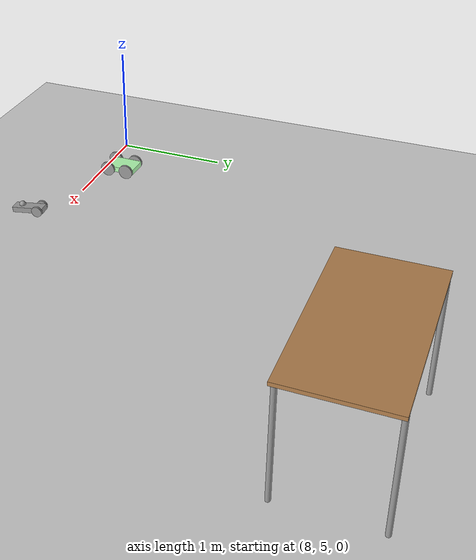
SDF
<sdf version="1.6">
 <world name="default">
  <model name="ground_plane">
   <static>1</static>
   <link name="link">
    <collision name="collision">
     <geometry><plane><normal>0 0 1</normal><size>100 100</size></plane></geometry>
     <surface><friction><ode><mu>100</mu><mu2>50</mu2></ode></friction></surface>
    </collision>
    <visual name="visual">
     <cast_shadows>0</cast_shadows>
     <geometry><plane><normal>0 0 1</normal><size>100 100</size></plane></geometry>
     <material>
      <script><uri>file://media/materials/scripts/gazebo.material</uri><name>Gazebo/Grey</name></script>
     </material>
    </visual>
   </link>
  </model>
  <model name="table">
   <static>1</static>
   <link name="link">
    <collision name="surface">
     <pose>0 0 1 0 -0 0</pose>
     <geometry><box><size>1.5 0.8 0.03</size></box></geometry>
     <surface><friction><ode><mu>0.6</mu><mu2>0.6</mu2></ode></friction></surface>
    </collision>
    <visual name="visual1">
     <pose>0 0 1 0 -0 0</pose>
     <geometry><box><size>1.5 0.8 0.03</size></box></geometry>
     <material>
      <script><uri>file://media/materials/scripts/gazebo.material</uri><name>Gazebo/Wood</name></script>
     </material>
    </visual>
    <collision name="front_left_leg">
     <pose>0.68 0.38 0.5 0 -0 0</pose>
     <geometry><cylinder><radius>0.02</radius><length>1</length></cylinder></geometry>
    </collision>
    <visual name="front_left_leg">
     <pose>0.68 0.38 0.5 0 -0 0</pose>
     <geometry><cylinder><radius>0.02</radius><length>1</length></cylinder></geometry>
     <material>
      <script><uri>file://media/materials/scripts/gazebo.material</uri><name>Gazebo/Grey</name></script>
     </material>
    </visual>
    <collision name="front_right_leg">
     <pose>0.68 -0.38 0.5 0 -0 0</pose>
     <geometry><cylinder><radius>0.02</radius><length>1</length></cylinder></geometry>
    </collision>
    <visual name="front_right_leg">
     <pose>0.68 -0.38 0.5 0 -0 0</pose>
     <geometry><cylinder><radius>0.02</radius><length>1</length></cylinder></geometry>
     <material>
      <script><uri>file://media/materials/scripts/gazebo.material</uri><name>Gazebo/Grey</name></script>
     </material>
    </visual>
    <collision name="back_right_leg">
     <pose>-0.68 -0.38 0.5 0 -0 0</pose>
     <geometry><cylinder><radius>0.02</radius><length>1</length></cylinder></geometry>
    </collision>
    <visual name="back_right_leg">
     <pose>-0.68 -0.38 0.5 0 -0 0</pose>
     <geometry><cylinder><radius>0.02</radius><length>1</length></cylinder></geometry>
     <material>
      <script><uri>file://media/materials/scripts/gazebo.material</uri><name>Gazebo/Grey</name></script>
     </material>
    </visual>
    <collision name="back_left_leg">
     <pose>-0.68 0.38 0.5 0 -0 0</pose>
     <geometry><cylinder><radius>0.02</radius><length>1</length></cylinder></geometry>
    </collision>
    <visual name="back_left_leg">
     <pose>-0.68 0.38 0.5 0 -0 0</pose>
     <geometry><cylinder><radius>0.02</radius><length>1</length></cylinder></geometry>
     <material>
      <script><uri>file://media/materials/scripts/gazebo.material</uri><name>Gazebo/Grey</name></script>
     </material>
    </visual>
   </link>
   <pose>11.3668 8.21918 0 0 -0 0</pose>
  </model>
  <model name="robot_1">
   <link name="link_0">
    <pose>-2.13328 0.459345 0.5075 0 -0 0</pose>
    <inertial>
     <mass>1</mass>
     <inertia>
      <ixx>0.166667</ixx>
      <ixy>0</ixy>
      <ixz>0</ixz>
      <iyy>0.166667</iyy>
      <iyz>0</iyz>
      <izz>0.166667</izz>
     </inertia>
     <pose>0 0 0.4 0 -0 0</pose>
    </inertial>
    <visual name="visual">
     <geometry><box><size>0.1 0.3 0.05</size></box></geometry>
     <material>
      <lighting>1</lighting>
      <script><uri>file://media/materials/scripts/gazebo.material</uri><name>Gazebo/Grey</name></script>
      <ambient>0.3 0.3 0.3 1</ambient>
      <diffuse>0.7 0.7 0.7 1</diffuse>
      <specular>0.01 0.01 0.01 1</specular>
      <emissive>0 0 0 1</emissive>
      <shader type="vertex"><normal_map>__default__</normal_map></shader>
     </material>
    </visual>
    <collision name="collision">
     <geometry><box><size>0.1 0.3 0.05</size></box></geometry>
     <surface>
      <friction>
       <ode><mu>1</mu><mu2>1</mu2><fdir1>0 0 0</fdir1><slip1>0</slip1><slip2>0</slip2></ode>
       <torsional>
        <coefficient>1</coefficient>
        <patch_radius>0</patch_radius>
        <surface_radius>0</surface_radius>
        <use_patch_radius>1</use_patch_radius>
        <ode><slip>0</slip></ode>
       </torsional>
      </friction>
      <bounce><restitution_coefficient>0</restitution_coefficient><threshold>1e+06</threshold></bounce>
      <contact>
       <collide_without_contact>0</collide_without_contact>
       <collide_without_contact_bitmask>1</collide_without_contact_bitmask>
       <collide_bitmask>1</collide_bitmask>
       <ode>
        <soft_cfm>0</soft_cfm>
        <soft_erp>0.2</soft_erp>
        <kp>1e+13</kp>
        <kd>1</kd>
        <max_vel>0.01</max_vel>
        <min_depth>0</min_depth>
       </ode>
       <bullet>
        <split_impulse>1</split_impulse>
        <split_impulse_penetration_threshold>-0.01</split_impulse_penetration_threshold>
        <soft_cfm>0</soft_cfm>
        <soft_erp>0.2</soft_erp>
        <kp>1e+13</kp>
        <kd>1</kd>
       </bullet>
      </contact>
     </surface>
    </collision>
   </link>
   <link name="link_1">
    <pose>-2.19328 0.359348 0.5075 0 -0 0</pose>
    <inertial>
     <mass>1</mass>
     <inertia><ixx>0.145833</ixx><ixy>0</ixy><ixz>0</ixz><iyy>0.145833</iyy><iyz>0</iyz><izz>0.125</izz></inertia>
    </inertial>
    <visual name="visual">
     <pose>0 0 0 1.5707 0 1.5707</pose>
     <geometry><cylinder><radius>0.05</radius><length>0.02</length></cylinder></geometry>
     <material>
      <lighting>1</lighting>
      <script><uri>file://media/materials/scripts/gazebo.material</uri><name>Gazebo/Grey</name></script>
      <ambient>0.3 0.3 0.3 1</ambient>
      <diffuse>0.7 0.7 0.7 1</diffuse>
      <specular>0.01 0.01 0.01 1</specular>
      <emissive>0 0 0 1</emissive>
      <shader type="vertex"><normal_map>__default__</normal_map></shader>
     </material>
    </visual>
    <collision name="collision">
     <pose>0 0 0 1.5707 0 1.5705</pose>
     <geometry><cylinder><radius>0.05</radius><length>0.02</length></cylinder></geometry>
     <surface>
      <friction>
       <ode><mu>1</mu><mu2>1</mu2><fdir1>0 0 0</fdir1><slip1>0</slip1><slip2>0</slip2></ode>
       <torsional>
        <coefficient>1</coefficient>
        <patch_radius>0</patch_radius>
        <surface_radius>0</surface_radius>
        <use_patch_radius>1</use_patch_radius>
        <ode><slip>0</slip></ode>
       </torsional>
      </friction>
      <bounce><restitution_coefficient>0</restitution_coefficient><threshold>1e+06</threshold></bounce>
      <contact>
       <collide_without_contact>0</collide_without_contact>
       <collide_without_contact_bitmask>1</collide_without_contact_bitmask>
       <collide_bitmask>1</collide_bitmask>
       <ode>
        <soft_cfm>0</soft_cfm>
        <soft_erp>0.2</soft_erp>
        <kp>1e+13</kp>
        <kd>1</kd>
        <max_vel>0.01</max_vel>
        <min_depth>0</min_depth>
       </ode>
       <bullet>
        <split_impulse>1</split_impulse>
        <split_impulse_penetration_threshold>-0.01</split_impulse_penetration_threshold>
        <soft_cfm>0</soft_cfm>
        <soft_erp>0.2</soft_erp>
        <kp>1e+13</kp>
        <kd>1</kd>
       </bullet>
      </contact>
     </surface>
    </collision>
   </link>
   <link name="link_1_clone">
    <pose>-2.07328 0.359348 0.5075 0 -0 0</pose>
    <inertial>
     <mass>1</mass>
     <inertia><ixx>0.145833</ixx><ixy>0</ixy><ixz>0</ixz><iyy>0.145833</iyy><iyz>0</iyz><izz>0.125</izz></inertia>
    </inertial>
    <visual name="visual">
     <pose>0 0 0 1.5707 0 1.5707</pose>
     <geometry><cylinder><radius>0.05</radius><length>0.02</length></cylinder></geometry>
     <material>
      <lighting>1</lighting>
      <script><uri>file://media/materials/scripts/gazebo.material</uri><name>Gazebo/Grey</name></script>
      <ambient>0.3 0.3 0.3 1</ambient>
      <diffuse>0.7 0.7 0.7 1</diffuse>
      <specular>0.01 0.01 0.01 1</specular>
      <emissive>0 0 0 1</emissive>
      <shader type="vertex"><normal_map>__default__</normal_map></shader>
     </material>
    </visual>
    <collision name="collision">
     <pose>0 0 0 1.5707 0 1.5705</pose>
     <geometry><cylinder><radius>0.05</radius><length>0.02</length></cylinder></geometry>
     <surface>
      <friction>
       <ode><mu>1</mu><mu2>1</mu2><fdir1>0 0 0</fdir1><slip1>0</slip1><slip2>0</slip2></ode>
       <torsional>
        <coefficient>1</coefficient>
        <patch_radius>0</patch_radius>
        <surface_radius>0</surface_radius>
        <use_patch_radius>1</use_patch_radius>
        <ode><slip>0</slip></ode>
       </torsional>
      </friction>
      <bounce><restitution_coefficient>0</restitution_coefficient><threshold>1e+06</threshold></bounce>
      <contact>
       <collide_without_contact>0</collide_without_contact>
       <collide_without_contact_bitmask>1</collide_without_contact_bitmask>
       <collide_bitmask>1</collide_bitmask>
       <ode>
        <soft_cfm>0</soft_cfm>
        <soft_erp>0.2</soft_erp>
        <kp>1e+13</kp>
        <kd>1</kd>
        <max_vel>0.01</max_vel>
        <min_depth>0</min_depth>
       </ode>
       <bullet>
        <split_impulse>1</split_impulse>
        <split_impulse_penetration_threshold>-0.01</split_impulse_penetration_threshold>
        <soft_cfm>0</soft_cfm>
        <soft_erp>0.2</soft_erp>
        <kp>1e+13</kp>
        <kd>1</kd>
       </bullet>
      </contact>
     </surface>
    </collision>
   </link>
   <link name="link_2">
    <pose>-2.14328 0.529345 0.4775 0 -0 0</pose>
    <inertial>
     <mass>1</mass>
     <inertia><ixx>0.1</ixx><ixy>0</ixy><ixz>0</ixz><iyy>0.1</iyy><iyz>0</iyz><izz>0.1</izz></inertia>
    </inertial>
    <visual name="visual">
     <geometry><sphere><radius>0.03</radius></sphere></geometry>
     <material>
      <lighting>1</lighting>
      <script><uri>file://media/materials/scripts/gazebo.material</uri><name>Gazebo/Grey</name></script>
      <ambient>0.3 0.3 0.3 1</ambient>
      <diffuse>0.7 0.7 0.7 1</diffuse>
      <specular>0.01 0.01 0.01 1</specular>
      <emissive>0 0 0 1</emissive>
      <shader type="vertex"><normal_map>__default__</normal_map></shader>
     </material>
    </visual>
    <collision name="collision">
     <geometry><sphere><radius>0.03</radius></sphere></geometry>
     <surface>
      <friction>
       <ode><mu>1</mu><mu2>1</mu2><fdir1>0 0 0</fdir1><slip1>0</slip1><slip2>0</slip2></ode>
       <torsional>
        <coefficient>1</coefficient>
        <patch_radius>0</patch_radius>
        <surface_radius>0</surface_radius>
        <use_patch_radius>1</use_patch_radius>
        <ode><slip>0</slip></ode>
       </torsional>
      </friction>
      <bounce><restitution_coefficient>0</restitution_coefficient><threshold>1e+06</threshold></bounce>
      <contact>
       <collide_without_contact>0</collide_without_contact>
       <collide_without_contact_bitmask>1</collide_without_contact_bitmask>
       <collide_bitmask>1</collide_bitmask>
       <ode>
        <soft_cfm>0</soft_cfm>
        <soft_erp>0.2</soft_erp>
        <kp>1e+13</kp>
        <kd>1</kd>
        <max_vel>0.01</max_vel>
        <min_depth>0</min_depth>
       </ode>
       <bullet>
        <split_impulse>1</split_impulse>
        <split_impulse_penetration_threshold>-0.01</split_impulse_penetration_threshold>
        <soft_cfm>0</soft_cfm>
        <soft_erp>0.2</soft_erp>
        <kp>1e+13</kp>
        <kd>1</kd>
       </bullet>
      </contact>
     </surface>
    </collision>
   </link>
   <joint name="link_0_JOINT_1" type="revolute">
    <parent>link_0</parent>
    <child>link_1</child>
    <axis>
     <xyz>1 0 0</xyz>
     <use_parent_model_frame>0</use_parent_model_frame>
     <limit>
      <lower>-1.79769e+308</lower>
      <upper>1.79769e+308</upper>
      <effort>-1</effort>
      <velocity>-1</velocity>
     </limit>
     <dynamics>
      <spring_reference>0</spring_reference>
      <spring_stiffness>0</spring_stiffness>
      <damping>0</damping>
     </dynamics>
    </axis>
    <physics>
     <ode><limit><cfm>0</cfm><erp>0.2</erp></limit><suspension><cfm>0</cfm><erp>0.2</erp></suspension></ode>
    </physics>
   </joint>
   <joint name="link_0_JOINT_2" type="revolute">
    <parent>link_0</parent>
    <child>link_1_clone</child>
    <axis>
     <xyz>1 0 0</xyz>
     <use_parent_model_frame>0</use_parent_model_frame>
     <limit>
      <lower>-1.79769e+308</lower>
      <upper>1.79769e+308</upper>
      <effort>-1</effort>
      <velocity>-1</velocity>
     </limit>
     <dynamics>
      <spring_reference>0</spring_reference>
      <spring_stiffness>0</spring_stiffness>
      <damping>0</damping>
     </dynamics>
    </axis>
    <physics>
     <ode><limit><cfm>0</cfm><erp>0.2</erp></limit><suspension><cfm>0</cfm><erp>0.2</erp></suspension></ode>
    </physics>
   </joint>
   <joint name="link_0_JOINT_3" type="ball">
    <parent>link_0</parent>
    <child>link_2</child>
    <physics>
     <ode><limit><cfm>0</cfm><erp>0.2</erp></limit><suspension><cfm>0</cfm><erp>0.2</erp></suspension></ode>
    </physics>
   </joint>
   <static>0</static>
   <pose>11.6243 5.28479 0.591075 -3.04091 -1.1e-05 0.072111</pose>
  </model>
  <model name="robot_2">
   <link name="link">
    <inertial>
     <mass>1</mass>
     <inertia>
      <ixx>0.166667</ixx>
      <ixy>0</ixy>
      <ixz>0</ixz>
      <iyy>0.166667</iyy>
      <iyz>0</iyz>
      <izz>0.166667</izz>
     </inertia>
    </inertial>
    <visual name="visual">
     <geometry><box><size>0.2 0.3 0.05</size></box></geometry>
     <material>
      <script><name>Gazebo/Grey</name><uri>file://media/materials/scripts/gazebo.material</uri></script>
      <ambient>0.3 0.3 0.3 1</ambient>
      <diffuse>0.7 1 0.7 1</diffuse>
      <specular>0.01 0.01 0.01 1</specular>
      <emissive>0 0 0 1</emissive>
      <shader type="vertex"><normal_map>__default__</normal_map></shader>
     </material>
    </visual>
    <collision name="collision">
     <geometry><box><size>0.1 0.3 0.05</size></box></geometry>
     <surface>
      <friction>
       <ode><mu>1</mu><mu2>1</mu2><fdir1>0 0 0</fdir1><slip1>0</slip1><slip2>0</slip2></ode>
       <torsional>
        <coefficient>1</coefficient>
        <patch_radius>0</patch_radius>
        <surface_radius>0</surface_radius>
        <use_patch_radius>1</use_patch_radius>
        <ode><slip>0</slip></ode>
       </torsional>
      </friction>
      <bounce><restitution_coefficient>0</restitution_coefficient><threshold>1e+06</threshold></bounce>
      <contact>
       <collide_without_contact>0</collide_without_contact>
       <collide_without_contact_bitmask>1</collide_without_contact_bitmask>
       <collide_bitmask>1</collide_bitmask>
       <ode>
        <soft_cfm>0</soft_cfm>
        <soft_erp>0.2</soft_erp>
        <kp>1e+13</kp>
        <kd>1</kd>
        <max_vel>0.01</max_vel>
        <min_depth>0</min_depth>
       </ode>
       <bullet>
        <split_impulse>1</split_impulse>
        <split_impulse_penetration_threshold>-0.01</split_impulse_penetration_threshold>
        <soft_cfm>0</soft_cfm>
        <soft_erp>0.2</soft_erp>
        <kp>1e+13</kp>
        <kd>1</kd>
       </bullet>
      </contact>
     </surface>
    </collision>
   </link>
   <link name="link_0">
    <pose>-0.11 -0.126568 4e-06 1e-05 -0 0</pose>
    <inertial>
     <mass>1</mass>
     <inertia><ixx>0.145833</ixx><ixy>0</ixy><ixz>0</ixz><iyy>0.145833</iyy><iyz>0</iyz><izz>0.125</izz></inertia>
    </inertial>
    <visual name="visual">
     <pose>0 0 0 1.5707 0 1.5707</pose>
     <geometry><cylinder><radius>0.07</radius><length>0.02</length></cylinder></geometry>
     <material>
      <lighting>1</lighting>
      <script><uri>file://media/materials/scripts/gazebo.material</uri><name>Gazebo/Grey</name></script>
      <ambient>0.3 0.3 0.3 1</ambient>
      <diffuse>0.7 0.7 0.7 1</diffuse>
      <specular>0.01 0.01 0.01 1</specular>
      <emissive>0 0 0 1</emissive>
      <shader type="vertex"><normal_map>__default__</normal_map></shader>
     </material>
    </visual>
    <collision name="collision">
     <pose>0 0 0 1.5707 0 1.5707</pose>
     <geometry><cylinder><radius>0.07</radius><length>0.02</length></cylinder></geometry>
     <surface>
      <friction>
       <ode><mu>1</mu><mu2>1</mu2><fdir1>0 0 0</fdir1><slip1>0</slip1><slip2>0</slip2></ode>
       <torsional>
        <coefficient>1</coefficient>
        <patch_radius>0</patch_radius>
        <surface_radius>0</surface_radius>
        <use_patch_radius>1</use_patch_radius>
        <ode><slip>0</slip></ode>
       </torsional>
      </friction>
      <bounce><restitution_coefficient>0</restitution_coefficient><threshold>1e+06</threshold></bounce>
      <contact>
       <collide_without_contact>0</collide_without_contact>
       <collide_without_contact_bitmask>1</collide_without_contact_bitmask>
       <collide_bitmask>1</collide_bitmask>
       <ode>
        <soft_cfm>0</soft_cfm>
        <soft_erp>0.2</soft_erp>
        <kp>1e+13</kp>
        <kd>1</kd>
        <max_vel>0.01</max_vel>
        <min_depth>0</min_depth>
       </ode>
       <bullet>
        <split_impulse>1</split_impulse>
        <split_impulse_penetration_threshold>-0.01</split_impulse_penetration_threshold>
        <soft_cfm>0</soft_cfm>
        <soft_erp>0.2</soft_erp>
        <kp>1e+13</kp>
        <kd>1</kd>
       </bullet>
      </contact>
     </surface>
    </collision>
   </link>
   <link name="link_0_clone">
    <pose>-0.11 0.08 0 2e-05 -0 0</pose>
    <inertial>
     <mass>1</mass>
     <inertia><ixx>0.145833</ixx><ixy>0</ixy><ixz>0</ixz><iyy>0.145833</iyy><iyz>0</iyz><izz>0.125</izz></inertia>
    </inertial>
    <visual name="visual">
     <pose>0 0 0 1.5707 0 1.5707</pose>
     <geometry><cylinder><radius>0.07</radius><length>0.02</length></cylinder></geometry>
     <material>
      <lighting>1</lighting>
      <script><uri>file://media/materials/scripts/gazebo.material</uri><name>Gazebo/Grey</name></script>
      <ambient>0.3 0.3 0.3 1</ambient>
      <diffuse>0.7 0.7 0.7 1</diffuse>
      <specular>0.01 0.01 0.01 1</specular>
      <emissive>0 0 0 1</emissive>
      <shader type="vertex"><normal_map>__default__</normal_map></shader>
     </material>
    </visual>
    <collision name="collision">
     <pose>0 0 0 1.5707 0 1.5707</pose>
     <geometry><cylinder><radius>0.07</radius><length>0.02</length></cylinder></geometry>
     <surface>
      <friction>
       <ode><mu>1</mu><mu2>1</mu2><fdir1>0 0 0</fdir1><slip1>0</slip1><slip2>0</slip2></ode>
       <torsional>
        <coefficient>1</coefficient>
        <patch_radius>0</patch_radius>
        <surface_radius>0</surface_radius>
        <use_patch_radius>1</use_patch_radius>
        <ode><slip>0</slip></ode>
       </torsional>
      </friction>
      <bounce><restitution_coefficient>0</restitution_coefficient><threshold>1e+06</threshold></bounce>
      <contact>
       <collide_without_contact>0</collide_without_contact>
       <collide_without_contact_bitmask>1</collide_without_contact_bitmask>
       <collide_bitmask>1</collide_bitmask>
       <ode>
        <soft_cfm>0</soft_cfm>
        <soft_erp>0.2</soft_erp>
        <kp>1e+13</kp>
        <kd>1</kd>
        <max_vel>0.01</max_vel>
        <min_depth>0</min_depth>
       </ode>
       <bullet>
        <split_impulse>1</split_impulse>
        <split_impulse_penetration_threshold>-0.01</split_impulse_penetration_threshold>
        <soft_cfm>0</soft_cfm>
        <soft_erp>0.2</soft_erp>
        <kp>1e+13</kp>
        <kd>1</kd>
       </bullet>
      </contact>
     </surface>
    </collision>
   </link>
   <link name="link_0_clone_0">
    <pose>0.11 0.08 0 2e-05 -0 0</pose>
    <inertial>
     <mass>1</mass>
     <inertia><ixx>0.145833</ixx><ixy>0</ixy><ixz>0</ixz><iyy>0.145833</iyy><iyz>0</iyz><izz>0.125</izz></inertia>
    </inertial>
    <visual name="visual">
     <pose>0 0 0 1.5707 -0 -1.5707</pose>
     <geometry><cylinder><radius>0.07</radius><length>0.02</length></cylinder></geometry>
     <material>
      <lighting>1</lighting>
      <script><uri>file://media/materials/scripts/gazebo.material</uri><name>Gazebo/Grey</name></script>
      <ambient>0.3 0.3 0.3 1</ambient>
      <diffuse>0.7 0.7 0.7 1</diffuse>
      <specular>0.01 0.01 0.01 1</specular>
      <emissive>0 0 0 1</emissive>
      <shader type="vertex"><normal_map>__default__</normal_map></shader>
     </material>
    </visual>
    <collision name="collision">
     <pose>0 0 0 1.5707 -0 -1.5707</pose>
     <geometry><cylinder><radius>0.07</radius><length>0.02</length></cylinder></geometry>
     <surface>
      <friction>
       <ode><mu>1</mu><mu2>1</mu2><fdir1>0 0 0</fdir1><slip1>0</slip1><slip2>0</slip2></ode>
       <torsional>
        <coefficient>1</coefficient>
        <patch_radius>0</patch_radius>
        <surface_radius>0</surface_radius>
        <use_patch_radius>1</use_patch_radius>
        <ode><slip>0</slip></ode>
       </torsional>
      </friction>
      <bounce><restitution_coefficient>0</restitution_coefficient><threshold>1e+06</threshold></bounce>
      <contact>
       <collide_without_contact>0</collide_without_contact>
       <collide_without_contact_bitmask>1</collide_without_contact_bitmask>
       <collide_bitmask>1</collide_bitmask>
       <ode>
        <soft_cfm>0</soft_cfm>
        <soft_erp>0.2</soft_erp>
        <kp>1e+13</kp>
        <kd>1</kd>
        <max_vel>0.01</max_vel>
        <min_depth>0</min_depth>
       </ode>
       <bullet>
        <split_impulse>1</split_impulse>
        <split_impulse_penetration_threshold>-0.01</split_impulse_penetration_threshold>
        <soft_cfm>0</soft_cfm>
        <soft_erp>0.2</soft_erp>
        <kp>1e+13</kp>
        <kd>1</kd>
       </bullet>
      </contact>
     </surface>
    </collision>
   </link>
   <link name="link_0_clone_1">
    <pose>0.11 -0.11 1e-06 2e-05 -0 0</pose>
    <inertial>
     <mass>1</mass>
     <inertia><ixx>0.145833</ixx><ixy>0</ixy><ixz>0</ixz><iyy>0.145833</iyy><iyz>0</iyz><izz>0.125</izz></inertia>
    </inertial>
    <visual name="visual">
     <pose>0 0 0 1.5707 -0 -1.5707</pose>
     <geometry><cylinder><radius>0.07</radius><length>0.02</length></cylinder></geometry>
     <material>
      <lighting>1</lighting>
      <script><uri>file://media/materials/scripts/gazebo.material</uri><name>Gazebo/Grey</name></script>
      <ambient>0.3 0.3 0.3 1</ambient>
      <diffuse>0.7 0.7 0.7 1</diffuse>
      <specular>0.01 0.01 0.01 1</specular>
      <emissive>0 0 0 1</emissive>
      <shader type="vertex"><normal_map>__default__</normal_map></shader>
     </material>
    </visual>
    <collision name="collision">
     <pose>0 0 0 1.5707 -0 -1.5707</pose>
     <geometry><cylinder><radius>0.07</radius><length>0.02</length></cylinder></geometry>
     <surface>
      <friction>
       <ode><mu>1</mu><mu2>1</mu2><fdir1>0 0 0</fdir1><slip1>0</slip1><slip2>0</slip2></ode>
       <torsional>
        <coefficient>1</coefficient>
        <patch_radius>0</patch_radius>
        <surface_radius>0</surface_radius>
        <use_patch_radius>1</use_patch_radius>
        <ode><slip>0</slip></ode>
       </torsional>
      </friction>
      <bounce><restitution_coefficient>0</restitution_coefficient><threshold>1e+06</threshold></bounce>
      <contact>
       <collide_without_contact>0</collide_without_contact>
       <collide_without_contact_bitmask>1</collide_without_contact_bitmask>
       <collide_bitmask>1</collide_bitmask>
       <ode>
        <soft_cfm>0</soft_cfm>
        <soft_erp>0.2</soft_erp>
        <kp>1e+13</kp>
        <kd>1</kd>
        <max_vel>0.01</max_vel>
        <min_depth>0</min_depth>
       </ode>
       <bullet>
        <split_impulse>1</split_impulse>
        <split_impulse_penetration_threshold>-0.01</split_impulse_penetration_threshold>
        <soft_cfm>0</soft_cfm>
        <soft_erp>0.2</soft_erp>
        <kp>1e+13</kp>
        <kd>1</kd>
       </bullet>
      </contact>
     </surface>
    </collision>
   </link>
   <joint name="link_JOINT_0" type="revolute">
    <parent>link</parent>
    <child>link_0</child>
    <axis>
     <xyz>1 0 0</xyz>
     <use_parent_model_frame>0</use_parent_model_frame>
     <limit>
      <lower>-1.79769e+308</lower>
      <upper>1.79769e+308</upper>
      <effort>-1</effort>
      <velocity>-1</velocity>
     </limit>
     <dynamics>
      <spring_reference>0</spring_reference>
      <spring_stiffness>0</spring_stiffness>
      <damping>0</damping>
     </dynamics>
    </axis>
    <physics>
     <ode><limit><cfm>0</cfm><erp>0.2</erp></limit><suspension><cfm>0</cfm><erp>0.2</erp></suspension></ode>
    </physics>
   </joint>
   <joint name="link_JOINT_1" type="revolute">
    <parent>link</parent>
    <child>link_0_clone_1</child>
    <axis>
     <xyz>1 0 0</xyz>
     <use_parent_model_frame>0</use_parent_model_frame>
     <limit>
      <lower>-1.79769e+308</lower>
      <upper>1.79769e+308</upper>
      <effort>-1</effort>
      <velocity>-1</velocity>
     </limit>
     <dynamics>
      <spring_reference>0</spring_reference>
      <spring_stiffness>0</spring_stiffness>
      <damping>0</damping>
     </dynamics>
    </axis>
    <physics>
     <ode><limit><cfm>0</cfm><erp>0.2</erp></limit><suspension><cfm>0</cfm><erp>0.2</erp></suspension></ode>
    </physics>
   </joint>
   <joint name="link_JOINT_2" type="revolute">
    <parent>link</parent>
    <child>link_0_clone_0</child>
    <axis>
     <xyz>1 0 0</xyz>
     <use_parent_model_frame>0</use_parent_model_frame>
     <limit>
      <lower>-1.79769e+308</lower>
      <upper>1.79769e+308</upper>
      <effort>-1</effort>
      <velocity>-1</velocity>
     </limit>
     <dynamics>
      <spring_reference>0</spring_reference>
      <spring_stiffness>0</spring_stiffness>
      <damping>0</damping>
     </dynamics>
    </axis>
    <physics>
     <ode><limit><cfm>0</cfm><erp>0.2</erp></limit><suspension><cfm>0</cfm><erp>0.2</erp></suspension></ode>
    </physics>
   </joint>
   <joint name="link_JOINT_3" type="revolute">
    <parent>link</parent>
    <child>link_0_clone</child>
    <axis>
     <xyz>1 0 0</xyz>
     <use_parent_model_frame>0</use_parent_model_frame>
     <limit>
      <lower>-1.79769e+308</lower>
      <upper>1.79769e+308</upper>
      <effort>-1</effort>
      <velocity>-1</velocity>
     </limit>
     <dynamics>
      <spring_reference>0</spring_reference>
      <spring_stiffness>0</spring_stiffness>
      <damping>0</damping>
     </dynamics>
    </axis>
    <physics>
     <ode><limit><cfm>0</cfm><erp>0.2</erp></limit><suspension><cfm>0</cfm><erp>0.2</erp></suspension></ode>
    </physics>
   </joint>
   <static>0</static>
   <pose>8.5207 5.20541 0.070001 1.9e-05 -9e-06 -0.013131</pose>
  </model>
 </world>
</sdf>
